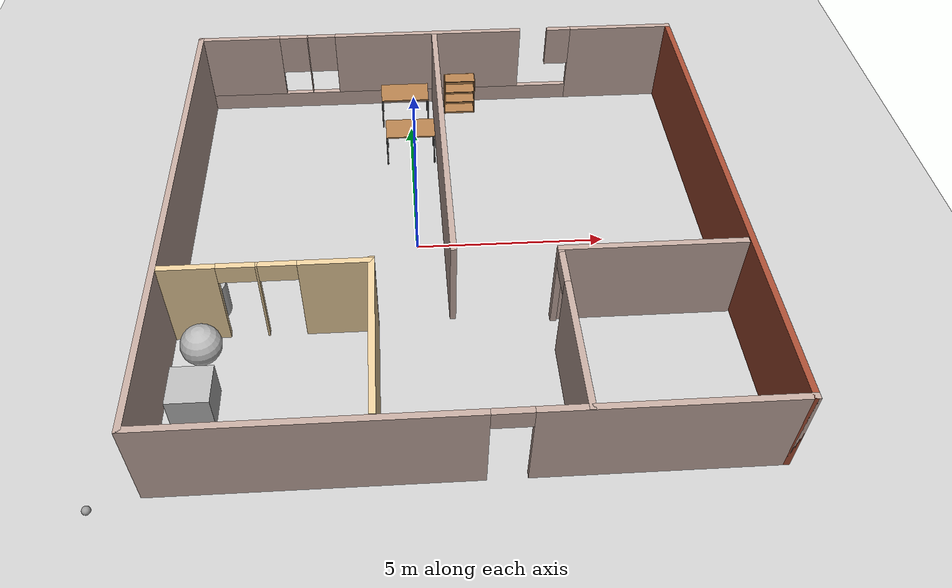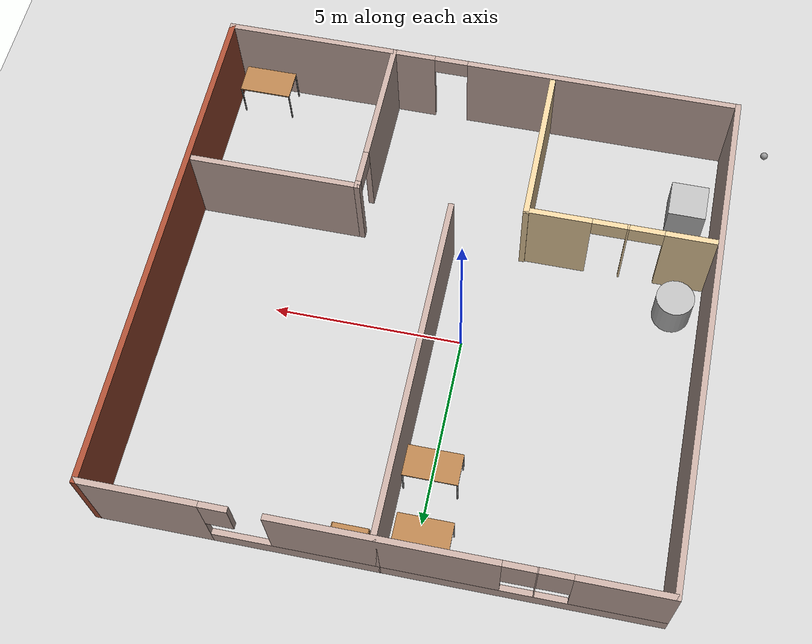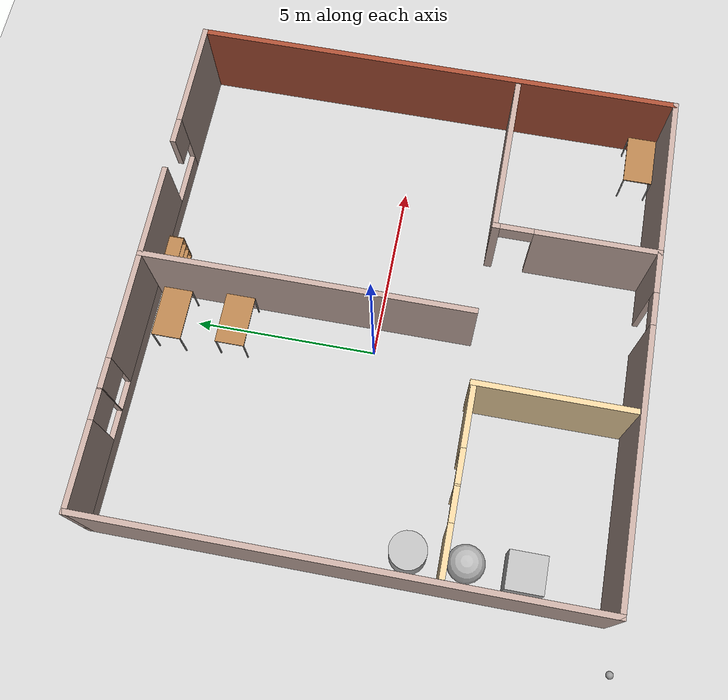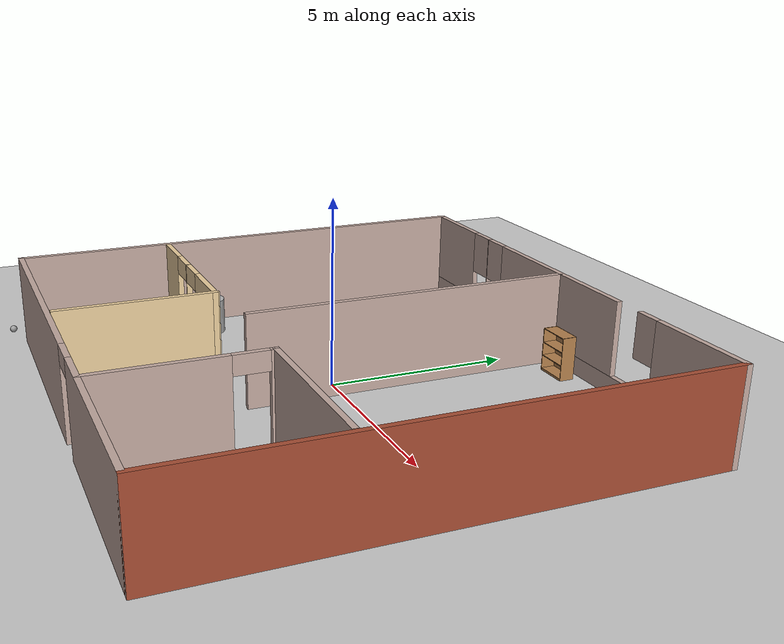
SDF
<sdf version="1.6">
 <world name="default">
  <plugin name="welcome_message" filename="libwelcome_message.so"/>
  <light name="sun" type="directional">
   <pose>0 0 10 0 -0 0</pose>
   <diffuse>0.8 0.8 0.8 1</diffuse>
   <specular>0.1 0.1 0.1 1</specular>
   <attenuation>
    <range>1000</range>
    <constant>0.9</constant>
    <linear>0.01</linear>
    <quadratic>0.001</quadratic>
   </attenuation>
   <direction>-0.5 0.5 -1</direction>
  </light>
  <model name="ground_plane">
   <static>1</static>
   <link name="link">
    <collision name="collision">
     <geometry><plane><normal>0 0 1</normal><size>100 100</size></plane></geometry>
     <surface><friction><ode><mu>100</mu><mu2>50</mu2></ode></friction></surface>
    </collision>
    <visual name="visual">
     <cast_shadows>0</cast_shadows>
     <geometry><plane><normal>0 0 1</normal><size>100 100</size></plane></geometry>
     <material>
      <script><uri>file://media/materials/scripts/gazebo.material</uri><name>Gazebo/Grey</name></script>
     </material>
    </visual>
   </link>
  </model>
  <gravity>0 0 -9.8</gravity>
  <magnetic_field>6e-06 2.3e-05 -4.2e-05</magnetic_field>
  <atmosphere type="adiabatic"/>
  <physics name="default_physics" default="0" type="ode">
   <max_step_size>0.001</max_step_size>
   <real_time_factor>1</real_time_factor>
   <real_time_update_rate>1000</real_time_update_rate>
  </physics>
  <scene><ambient>0.4 0.4 0.4 1</ambient><background>0.7 0.7 0.7 1</background><shadows>1</shadows></scene>
  <spherical_coordinates>
   <surface_model>EARTH_WGS84</surface_model>
   <latitude_deg>0</latitude_deg>
   <longitude_deg>0</longitude_deg>
   <elevation>0</elevation>
   <heading_deg>0</heading_deg>
  </spherical_coordinates>
  <model name="Apartment">
   <pose>0.8489 -0.348456 0.074794 0.001273 -0 0</pose>
   <link name="Wall_0">
    <collision name="Wall_0_Collision">
     <geometry><box><size>13.5 0.15 2.5</size></box></geometry>
     <pose>0 0 1.25 0 -0 0</pose>
    </collision>
    <visual name="Wall_0_Visual">
     <pose>0 0 1.25 0 -0 0</pose>
     <geometry><box><size>13.5 0.15 2.5</size></box></geometry>
     <material>
      <script><uri>file://media/materials/scripts/gazebo.material</uri><name>Gazebo/Grey</name></script>
      <ambient>0.760784 0.662745 0.627451 1</ambient>
     </material>
    </visual>
    <pose>-6.925 0 0 0 0 -1.5708</pose>
   </link>
   <link name="Wall_1">
    <pose>0 -6.675 0 0 -0 0</pose>
    <visual name="Wall_1_Visual_0">
     <pose>-3.31784 0 1.25 0 -0 0</pose>
     <geometry><box><size>7.36433 0.15 2.5</size></box></geometry>
     <material>
      <script><uri>file://media/materials/scripts/gazebo.material</uri><name>Gazebo/Grey</name></script>
      <ambient>0.760784 0.662745 0.627451 1</ambient>
     </material>
    </visual>
    <collision name="Wall_1_Collision_0">
     <geometry><box><size>7.36433 0.15 2.5</size></box></geometry>
     <pose>-3.31784 0 1.25 0 -0 0</pose>
    </collision>
    <visual name="Wall_1_Visual_1">
     <pose>4.13216 0 1.25 0 -0 0</pose>
     <geometry><box><size>5.73567 0.15 2.5</size></box></geometry>
     <material>
      <script><uri>file://media/materials/scripts/gazebo.material</uri><name>Gazebo/Grey</name></script>
      <ambient>0.760784 0.662745 0.627451 1</ambient>
     </material>
    </visual>
    <collision name="Wall_1_Collision_1">
     <geometry><box><size>5.73567 0.15 2.5</size></box></geometry>
     <pose>4.13216 0 1.25 0 -0 0</pose>
    </collision>
    <visual name="Wall_1_Visual_2">
     <pose>0.814328 0 2.25 0 -0 0</pose>
     <geometry><box><size>0.9 0.15 0.5</size></box></geometry>
     <material>
      <script><uri>file://media/materials/scripts/gazebo.material</uri><name>Gazebo/Grey</name></script>
      <ambient>0.760784 0.662745 0.627451 1</ambient>
     </material>
    </visual>
    <collision name="Wall_1_Collision_2">
     <geometry><box><size>0.9 0.15 0.5</size></box></geometry>
     <pose>0.814328 0 2.25 0 -0 0</pose>
    </collision>
   </link>
   <link name="Wall_10">
    <pose>-4.3729 -2.44089 0 0 -0 0</pose>
    <visual name="Wall_10_Visual_0">
     <pose>-1.80534 0 1.25 0 -0 0</pose>
     <geometry><box><size>1.33849 0.15 2.5</size></box></geometry>
     <material>
      <script><uri>file://media/materials/scripts/gazebo.material</uri><name>Gazebo/Grey</name></script>
      <ambient>0.921569 0.807843 0.615686 1</ambient>
     </material>
    </visual>
    <collision name="Wall_10_Collision_0">
     <geometry><box><size>1.33849 0.15 2.5</size></box></geometry>
     <pose>-1.80534 0 1.25 0 -0 0</pose>
    </collision>
    <visual name="Wall_10_Visual_1">
     <pose>-0.211947 0 1.25 0 -0 0</pose>
     <geometry><box><size>0.048297 0.15 2.5</size></box></geometry>
     <material>
      <script><uri>file://media/materials/scripts/gazebo.material</uri><name>Gazebo/Grey</name></script>
      <ambient>0.921569 0.807843 0.615686 1</ambient>
     </material>
    </visual>
    <collision name="Wall_10_Collision_1">
     <geometry><box><size>0.048297 0.15 2.5</size></box></geometry>
     <pose>-0.211947 0 1.25 0 -0 0</pose>
    </collision>
    <visual name="Wall_10_Visual_2">
     <pose>1.59339 0 1.25 0 -0 0</pose>
     <geometry><box><size>1.76239 0.15 2.5</size></box></geometry>
     <material>
      <script><uri>file://media/materials/scripts/gazebo.material</uri><name>Gazebo/Grey</name></script>
      <ambient>0.921569 0.807843 0.615686 1</ambient>
     </material>
    </visual>
    <collision name="Wall_10_Collision_2">
     <geometry><box><size>1.76239 0.15 2.5</size></box></geometry>
     <pose>1.59339 0 1.25 0 -0 0</pose>
    </collision>
    <visual name="Wall_10_Visual_3">
     <pose>-0.686096 0 2.25 0 -0 0</pose>
     <geometry><box><size>0.9 0.15 0.5</size></box></geometry>
     <material>
      <script><uri>file://media/materials/scripts/gazebo.material</uri><name>Gazebo/Grey</name></script>
      <ambient>0.921569 0.807843 0.615686 1</ambient>
     </material>
    </visual>
    <collision name="Wall_10_Collision_3">
     <geometry><box><size>0.9 0.15 0.5</size></box></geometry>
     <pose>-0.686096 0 2.25 0 -0 0</pose>
    </collision>
    <visual name="Wall_10_Visual_4">
     <pose>0.262201 0 2.25 0 -0 0</pose>
     <geometry><box><size>0.9 0.15 0.5</size></box></geometry>
     <material>
      <script><uri>file://media/materials/scripts/gazebo.material</uri><name>Gazebo/Grey</name></script>
      <ambient>0.921569 0.807843 0.615686 1</ambient>
     </material>
    </visual>
    <collision name="Wall_10_Collision_4">
     <geometry><box><size>0.9 0.15 0.5</size></box></geometry>
     <pose>0.262201 0 2.25 0 -0 0</pose>
    </collision>
   </link>
   <link name="Wall_11">
    <collision name="Wall_11_Collision">
     <geometry><box><size>4.25 0.15 2.5</size></box></geometry>
     <pose>0 0 1.25 0 -0 0</pose>
    </collision>
    <visual name="Wall_11_Visual">
     <pose>0 0 1.25 0 -0 0</pose>
     <geometry><box><size>4.25 0.15 2.5</size></box></geometry>
     <material>
      <script><uri>file://media/materials/scripts/gazebo.material</uri><name>Gazebo/Grey</name></script>
      <ambient>0.921569 0.807843 0.615686 1</ambient>
     </material>
    </visual>
    <pose>-1.97375 -4.4603 0 0 0 -1.5708</pose>
   </link>
   <link name="Wall_2">
    <collision name="Wall_2_Collision">
     <geometry><box><size>13.5 0.15 2.5</size></box></geometry>
     <pose>0 0 1.25 0 -0 0</pose>
    </collision>
    <visual name="Wall_2_Visual">
     <pose>0 0 1.25 0 -0 0</pose>
     <geometry><box><size>13.5 0.15 2.5</size></box></geometry>
     <material>
      <script><uri>file://media/materials/scripts/gazebo.material</uri><name>Gazebo/Bricks</name></script>
      <ambient>1 1 1 1</ambient>
     </material>
    </visual>
    <pose>6.925 0 0 0 -0 1.5708</pose>
   </link>
   <link name="Wall_3">
    <pose>0 6.675 0 0 -0 3.14159</pose>
    <visual name="Wall_3_Visual_0">
     <pose>-5.49902 0 1.25 0 -0 0</pose>
     <geometry><box><size>3.00196 0.15 2.5</size></box></geometry>
     <material>
      <script><uri>file://media/materials/scripts/gazebo.material</uri><name>Gazebo/Grey</name></script>
      <ambient>0.760784 0.662745 0.627451 1</ambient>
     </material>
    </visual>
    <collision name="Wall_3_Collision_0">
     <geometry><box><size>3.00196 0.15 2.5</size></box></geometry>
     <pose>-5.49902 0 1.25 0 -0 0</pose>
    </collision>
    <visual name="Wall_3_Visual_1">
     <pose>1.50098 0 0.25 0 -0 0</pose>
     <geometry><box><size>10.998 0.15 0.5</size></box></geometry>
     <material>
      <script><uri>file://media/materials/scripts/gazebo.material</uri><name>Gazebo/Grey</name></script>
      <ambient>0.760784 0.662745 0.627451 1</ambient>
     </material>
    </visual>
    <collision name="Wall_3_Collision_1">
     <geometry><box><size>10.998 0.15 0.5</size></box></geometry>
     <pose>1.50098 0 0.25 0 -0 0</pose>
    </collision>
    <visual name="Wall_3_Visual_2">
     <pose>0.25633 0 1.5 0 -0 0</pose>
     <geometry><box><size>5.50159 0.15 2</size></box></geometry>
     <material>
      <script><uri>file://media/materials/scripts/gazebo.material</uri><name>Gazebo/Grey</name></script>
      <ambient>0.760784 0.662745 0.627451 1</ambient>
     </material>
    </visual>
    <collision name="Wall_3_Collision_2">
     <geometry><box><size>5.50159 0.15 2</size></box></geometry>
     <pose>0.25633 0 1.5 0 -0 0</pose>
    </collision>
    <visual name="Wall_3_Visual_3">
     <pose>3.82009 0 1.5 0 -0 0</pose>
     <geometry><box><size>0.025936 0.15 2</size></box></geometry>
     <material>
      <script><uri>file://media/materials/scripts/gazebo.material</uri><name>Gazebo/Grey</name></script>
      <ambient>0.760784 0.662745 0.627451 1</ambient>
     </material>
    </visual>
    <collision name="Wall_3_Collision_3">
     <geometry><box><size>0.025936 0.15 2</size></box></geometry>
     <pose>3.82009 0 1.5 0 -0 0</pose>
    </collision>
    <visual name="Wall_3_Visual_4">
     <pose>5.81653 0 1.5 0 -0 0</pose>
     <geometry><box><size>2.36694 0.15 2</size></box></geometry>
     <material>
      <script><uri>file://media/materials/scripts/gazebo.material</uri><name>Gazebo/Grey</name></script>
      <ambient>0.760784 0.662745 0.627451 1</ambient>
     </material>
    </visual>
    <collision name="Wall_3_Collision_4">
     <geometry><box><size>2.36694 0.15 2</size></box></geometry>
     <pose>5.81653 0 1.5 0 -0 0</pose>
    </collision>
    <visual name="Wall_3_Visual_5">
     <pose>-3.64625 0 1.9 0 -0 0</pose>
     <geometry><box><size>0.703575 0.15 1.2</size></box></geometry>
     <material>
      <script><uri>file://media/materials/scripts/gazebo.material</uri><name>Gazebo/Grey</name></script>
      <ambient>0.760784 0.662745 0.627451 1</ambient>
     </material>
    </visual>
    <collision name="Wall_3_Collision_5">
     <geometry><box><size>0.703575 0.15 1.2</size></box></geometry>
     <pose>-3.64625 0 1.9 0 -0 0</pose>
    </collision>
    <visual name="Wall_3_Visual_6">
     <pose>3.40712 0 1.9 0 -0 0</pose>
     <geometry><box><size>0.8 0.15 1.2</size></box></geometry>
     <material>
      <script><uri>file://media/materials/scripts/gazebo.material</uri><name>Gazebo/Grey</name></script>
      <ambient>0.760784 0.662745 0.627451 1</ambient>
     </material>
    </visual>
    <collision name="Wall_3_Collision_6">
     <geometry><box><size>0.8 0.15 1.2</size></box></geometry>
     <pose>3.40712 0 1.9 0 -0 0</pose>
    </collision>
    <visual name="Wall_3_Visual_7">
     <pose>4.23306 0 1.9 0 -0 0</pose>
     <geometry><box><size>0.8 0.15 1.2</size></box></geometry>
     <material>
      <script><uri>file://media/materials/scripts/gazebo.material</uri><name>Gazebo/Grey</name></script>
      <ambient>0.760784 0.662745 0.627451 1</ambient>
     </material>
    </visual>
    <collision name="Wall_3_Collision_7">
     <geometry><box><size>0.8 0.15 1.2</size></box></geometry>
     <pose>4.23306 0 1.9 0 -0 0</pose>
    </collision>
   </link>
   <link name="Wall_5">
    <collision name="Wall_5_Collision">
     <geometry><box><size>9 0.15 2.5</size></box></geometry>
     <pose>0 0 1.25 0 -0 0</pose>
    </collision>
    <visual name="Wall_5_Visual">
     <pose>0 0 1.25 0 -0 0</pose>
     <geometry><box><size>9 0.15 2.5</size></box></geometry>
     <material>
      <script><uri>file://media/materials/scripts/gazebo.material</uri><name>Gazebo/Grey</name></script>
      <ambient>0.760784 0.662745 0.627451 1</ambient>
     </material>
    </visual>
    <pose>-0.072789 2.25 0 0 0 -1.5708</pose>
   </link>
   <link name="Wall_7">
    <pose>2.40502 -4.48734 0 0 -0 1.5708</pose>
    <visual name="Wall_7_Visual_0">
     <pose>-0.556201 0 1.25 0 -0 0</pose>
     <geometry><box><size>3.3876 0.15 2.5</size></box></geometry>
     <material>
      <script><uri>file://media/materials/scripts/gazebo.material</uri><name>Gazebo/Grey</name></script>
      <ambient>0.760784 0.662745 0.627451 1</ambient>
     </material>
    </visual>
    <collision name="Wall_7_Collision_0">
     <geometry><box><size>3.3876 0.15 2.5</size></box></geometry>
     <pose>-0.556201 0 1.25 0 -0 0</pose>
    </collision>
    <visual name="Wall_7_Visual_1">
     <pose>2.1438 0 1.25 0 -0 0</pose>
     <geometry><box><size>0.212402 0.15 2.5</size></box></geometry>
     <material>
      <script><uri>file://media/materials/scripts/gazebo.material</uri><name>Gazebo/Grey</name></script>
      <ambient>0.760784 0.662745 0.627451 1</ambient>
     </material>
    </visual>
    <collision name="Wall_7_Collision_1">
     <geometry><box><size>0.212402 0.15 2.5</size></box></geometry>
     <pose>2.1438 0 1.25 0 -0 0</pose>
    </collision>
    <visual name="Wall_7_Visual_2">
     <pose>1.5876 0 2.25 0 -0 0</pose>
     <geometry><box><size>0.9 0.15 0.5</size></box></geometry>
     <material>
      <script><uri>file://media/materials/scripts/gazebo.material</uri><name>Gazebo/Grey</name></script>
      <ambient>0.760784 0.662745 0.627451 1</ambient>
     </material>
    </visual>
    <collision name="Wall_7_Collision_2">
     <geometry><box><size>0.9 0.15 0.5</size></box></geometry>
     <pose>1.5876 0 2.25 0 -0 0</pose>
    </collision>
   </link>
   <link name="Wall_8">
    <collision name="Wall_8_Collision">
     <geometry><box><size>4.5 0.15 2.5</size></box></geometry>
     <pose>0 0 1.25 0 -0 0</pose>
    </collision>
    <visual name="Wall_8_Visual">
     <pose>0 0 1.25 0 -0 0</pose>
     <geometry><box><size>4.5 0.15 2.5</size></box></geometry>
     <material>
      <script><uri>file://media/materials/scripts/gazebo.material</uri><name>Gazebo/Grey</name></script>
      <ambient>0.760784 0.662745 0.627451 1</ambient>
     </material>
    </visual>
    <pose>4.58002 -2.31234 0 0 -0 0</pose>
   </link>
   <static>1</static>
  </model>
  <model name="bookshelf_0">
   <static>1</static>
   <link name="link">
    <inertial><mass>1</mass></inertial>
    <collision name="back">
     <pose>0 0.005 0.6 0 -0 0</pose>
     <geometry><box><size>0.9 0.01 1.2</size></box></geometry>
    </collision>
    <visual name="visual1">
     <pose>0 0.005 0.6 0 -0 0</pose>
     <geometry><box><size>0.9 0.01 1.2</size></box></geometry>
     <material>
      <script><uri>file://media/materials/scripts/gazebo.material</uri><name>Gazebo/Wood</name></script>
     </material>
    </visual>
    <collision name="left_side">
     <pose>0.45 -0.195 0.6 0 -0 0</pose>
     <geometry><box><size>0.02 0.4 1.2</size></box></geometry>
    </collision>
    <visual name="visual2">
     <pose>0.45 -0.195 0.6 0 -0 0</pose>
     <geometry><box><size>0.02 0.4 1.2</size></box></geometry>
     <material>
      <script><uri>file://media/materials/scripts/gazebo.material</uri><name>Gazebo/Wood</name></script>
     </material>
    </visual>
    <collision name="right_side">
     <pose>-0.45 -0.195 0.6 0 -0 0</pose>
     <geometry><box><size>0.02 0.4 1.2</size></box></geometry>
    </collision>
    <visual name="visual3">
     <pose>-0.45 -0.195 0.6 0 -0 0</pose>
     <geometry><box><size>0.02 0.4 1.2</size></box></geometry>
     <material>
      <script><uri>file://media/materials/scripts/gazebo.material</uri><name>Gazebo/Wood</name></script>
     </material>
    </visual>
    <collision name="bottom">
     <pose>0 -0.195 0.03 0 -0 0</pose>
     <geometry><box><size>0.88 0.4 0.06</size></box></geometry>
    </collision>
    <visual name="visual4">
     <pose>0 -0.195 0.03 0 -0 0</pose>
     <geometry><box><size>0.88 0.4 0.06</size></box></geometry>
     <material>
      <script><uri>file://media/materials/scripts/gazebo.material</uri><name>Gazebo/Wood</name></script>
     </material>
    </visual>
    <collision name="top">
     <pose>0 -0.195 1.19 0 -0 0</pose>
     <geometry><box><size>0.88 0.4 0.02</size></box></geometry>
    </collision>
    <visual name="visual5">
     <pose>0 -0.195 1.19 0 -0 0</pose>
     <geometry><box><size>0.88 0.4 0.02</size></box></geometry>
     <material>
      <script><uri>file://media/materials/scripts/gazebo.material</uri><name>Gazebo/Wood</name></script>
     </material>
    </visual>
    <collision name="low_shelf">
     <pose>0 -0.195 0.43 0 -0 0</pose>
     <geometry><box><size>0.88 0.4 0.02</size></box></geometry>
    </collision>
    <visual name="visual6">
     <pose>0 -0.195 0.43 0 -0 0</pose>
     <geometry><box><size>0.88 0.4 0.02</size></box></geometry>
     <material>
      <script><uri>file://media/materials/scripts/gazebo.material</uri><name>Gazebo/Wood</name></script>
     </material>
    </visual>
    <collision name="high_shelf">
     <pose>0 -0.195 0.8 0 -0 0</pose>
     <geometry><box><size>0.88 0.4 0.02</size></box></geometry>
    </collision>
    <visual name="visual7">
     <pose>0 -0.195 0.8 0 -0 0</pose>
     <geometry><box><size>0.88 0.4 0.02</size></box></geometry>
     <material>
      <script><uri>file://media/materials/scripts/gazebo.material</uri><name>Gazebo/Wood</name></script>
     </material>
    </visual>
   </link>
   <pose>1.525 6.11719 0 0 -0 0</pose>
  </model>
  <model name="my_ball">
   <link name="link_0">
    <inertial>
     <mass>1</mass>
     <inertia><ixx>0.1</ixx><ixy>0</ixy><ixz>0</ixz><iyy>0.1</iyy><iyz>0</iyz><izz>0.1</izz></inertia>
    </inertial>
    <visual name="visual">
     <geometry><sphere><radius>0.1</radius></sphere></geometry>
     <material>
      <lighting>1</lighting>
      <script><uri>file://media/materials/scripts/gazebo.material</uri><name>Gazebo/Grey</name></script>
      <ambient>1 1 1 1</ambient>
      <diffuse>1 1 1 1</diffuse>
      <specular>1 1 1 1</specular>
      <emissive>1 1 1 1</emissive>
      <shader type="vertex"><normal_map>__default__</normal_map></shader>
     </material>
    </visual>
    <collision name="collision">
     <geometry><sphere><radius>0.1</radius></sphere></geometry>
     <surface>
      <friction>
       <ode><mu>1</mu><mu2>1</mu2><fdir1>0 0 0</fdir1><slip1>0</slip1><slip2>0</slip2></ode>
       <torsional>
        <coefficient>1</coefficient>
        <patch_radius>0</patch_radius>
        <surface_radius>0</surface_radius>
        <use_patch_radius>1</use_patch_radius>
        <ode><slip>0</slip></ode>
       </torsional>
      </friction>
      <bounce><restitution_coefficient>0</restitution_coefficient><threshold>1e+06</threshold></bounce>
      <contact>
       <collide_without_contact>0</collide_without_contact>
       <collide_without_contact_bitmask>1</collide_without_contact_bitmask>
       <collide_bitmask>1</collide_bitmask>
       <ode>
        <soft_cfm>0</soft_cfm>
        <soft_erp>0.2</soft_erp>
        <kp>1e+13</kp>
        <kd>1</kd>
        <max_vel>0.01</max_vel>
        <min_depth>0</min_depth>
       </ode>
       <bullet>
        <split_impulse>1</split_impulse>
        <split_impulse_penetration_threshold>-0.01</split_impulse_penetration_threshold>
        <soft_cfm>0</soft_cfm>
        <soft_erp>0.2</soft_erp>
        <kp>1e+13</kp>
        <kd>1</kd>
       </bullet>
      </contact>
     </surface>
    </collision>
   </link>
   <static>0</static>
   <pose>-7.24424 -7.34328 0.1 0 -0 0</pose>
  </model>
  <model name="textured_shapes">
   <pose>-5.26159 -3.38501 0.5 0 -0 0</pose>
   <link name="box">
    <pose>0 -1.5 0 0 -0 0</pose>
    <collision name="collision"><geometry><box><size>1 1 1</size></box></geometry></collision>
    <visual name="visual">
     <geometry><box><size>1 1 1</size></box></geometry>
     <material>
      <script>
       <uri>model://textured_shapes/materials/scripts</uri>
       <uri>model://textured_shapes/materials/textures</uri>
       <name>TexturedShape/Squares</name>
      </script>
     </material>
    </visual>
    <inertial>
     <inertia><ixx>1</ixx><ixy>0</ixy><ixz>0</ixz><iyy>1</iyy><iyz>0</iyz><izz>1</izz></inertia>
     <mass>1</mass>
    </inertial>
   </link>
   <link name="sphere">
    <collision name="collision"><geometry><sphere><radius>0.5</radius></sphere></geometry></collision>
    <visual name="visual">
     <geometry><sphere><radius>0.5</radius></sphere></geometry>
     <material>
      <script>
       <uri>model://textured_shapes/materials/scripts</uri>
       <uri>model://textured_shapes/materials/textures</uri>
       <name>TexturedShape/Squares</name>
      </script>
     </material>
    </visual>
    <inertial>
     <inertia><ixx>1</ixx><ixy>0</ixy><ixz>0</ixz><iyy>1</iyy><iyz>0</iyz><izz>1</izz></inertia>
     <mass>1</mass>
    </inertial>
   </link>
   <link name="cylinder">
    <pose>0 1.5 0 0 -0 0</pose>
    <collision name="collision">
     <geometry><cylinder><radius>0.5</radius><length>1</length></cylinder></geometry>
    </collision>
    <visual name="visual">
     <geometry><cylinder><radius>0.5</radius><length>1</length></cylinder></geometry>
     <material>
      <script>
       <uri>model://textured_shapes/materials/scripts</uri>
       <uri>model://textured_shapes/materials/textures</uri>
       <name>TexturedShape/Squares</name>
      </script>
     </material>
    </visual>
    <inertial>
     <inertia><ixx>1</ixx><ixy>0</ixy><ixz>0</ixz><iyy>1</iyy><iyz>0</iyz><izz>1</izz></inertia>
     <mass>1</mass>
    </inertial>
   </link>
  </model>
  <model name="table">
   <static>0</static>
   <link name="link">
    <collision name="surface">
     <pose>0 0 1 0 -0 0</pose>
     <geometry><box><size>1.5 0.8 0.03</size></box></geometry>
     <surface><friction><ode><mu>0.6</mu><mu2>0.6</mu2></ode></friction></surface>
    </collision>
    <visual name="visual1">
     <pose>0 0 1 0 -0 0</pose>
     <geometry><box><size>1.4 0.8 0.04</size></box></geometry>
     <material>
      <script><uri>file://media/materials/scripts/gazebo.material</uri><name>Gazebo/Wood</name></script>
     </material>
    </visual>
    <collision name="front_left_leg">
     <pose>0.68 0.38 0.5 0 -0 0</pose>
     <geometry><cylinder><radius>0.02</radius><length>1</length></cylinder></geometry>
    </collision>
    <visual name="front_left_leg">
     <pose>0.68 0.38 0.5 0 -0 0</pose>
     <geometry><cylinder><radius>0.02</radius><length>1</length></cylinder></geometry>
     <material>
      <script><uri>file://media/materials/scripts/gazebo.material</uri><name>Gazebo/Grey</name></script>
     </material>
    </visual>
    <collision name="front_right_leg">
     <pose>0.68 -0.38 0.5 0 -0 0</pose>
     <geometry><cylinder><radius>0.02</radius><length>1</length></cylinder></geometry>
    </collision>
    <visual name="front_right_leg">
     <pose>0.68 -0.38 0.5 0 -0 0</pose>
     <geometry><cylinder><radius>0.02</radius><length>1</length></cylinder></geometry>
     <material>
      <script><uri>file://media/materials/scripts/gazebo.material</uri><name>Gazebo/Grey</name></script>
     </material>
    </visual>
    <collision name="back_right_leg">
     <pose>-0.68 -0.38 0.5 0 -0 0</pose>
     <geometry><cylinder><radius>0.02</radius><length>1</length></cylinder></geometry>
    </collision>
    <visual name="back_right_leg">
     <pose>-0.68 -0.38 0.5 0 -0 0</pose>
     <geometry><cylinder><radius>0.02</radius><length>1</length></cylinder></geometry>
     <material>
      <script><uri>file://media/materials/scripts/gazebo.material</uri><name>Gazebo/Grey</name></script>
     </material>
    </visual>
    <collision name="back_left_leg">
     <pose>-0.68 0.38 0.5 0 -0 0</pose>
     <geometry><cylinder><radius>0.02</radius><length>1</length></cylinder></geometry>
    </collision>
    <visual name="back_left_leg">
     <pose>-0.68 0.38 0.5 0 -0 0</pose>
     <geometry><cylinder><radius>0.02</radius><length>1</length></cylinder></geometry>
     <material>
      <script><uri>file://media/materials/scripts/gazebo.material</uri><name>Gazebo/Grey</name></script>
     </material>
    </visual>
    <inertial>
     <inertia><ixx>1</ixx><ixy>0</ixy><ixz>0</ixz><iyy>1</iyy><iyz>0</iyz><izz>1</izz></inertia>
     <mass>1</mass>
    </inertial>
   </link>
   <pose>6.81748 -6.48403 -1e-06 0 1e-06 0</pose>
  </model>
  <model name="table_0">
   <static>0</static>
   <link name="link">
    <collision name="surface">
     <pose>0 0 1 0 -0 0</pose>
     <geometry><box><size>1.5 0.8 0.03</size></box></geometry>
     <surface><friction><ode><mu>0.6</mu><mu2>0.6</mu2></ode></friction></surface>
    </collision>
    <visual name="visual1">
     <pose>0 0 1 0 -0 0</pose>
     <geometry><box><size>1.4 0.8 0.04</size></box></geometry>
     <material>
      <script><uri>file://media/materials/scripts/gazebo.material</uri><name>Gazebo/Wood</name></script>
     </material>
    </visual>
    <collision name="front_left_leg">
     <pose>0.68 0.38 0.5 0 -0 0</pose>
     <geometry><cylinder><radius>0.02</radius><length>1</length></cylinder></geometry>
    </collision>
    <visual name="front_left_leg">
     <pose>0.68 0.38 0.5 0 -0 0</pose>
     <geometry><cylinder><radius>0.02</radius><length>1</length></cylinder></geometry>
     <material>
      <script><uri>file://media/materials/scripts/gazebo.material</uri><name>Gazebo/Grey</name></script>
     </material>
    </visual>
    <collision name="front_right_leg">
     <pose>0.68 -0.38 0.5 0 -0 0</pose>
     <geometry><cylinder><radius>0.02</radius><length>1</length></cylinder></geometry>
    </collision>
    <visual name="front_right_leg">
     <pose>0.68 -0.38 0.5 0 -0 0</pose>
     <geometry><cylinder><radius>0.02</radius><length>1</length></cylinder></geometry>
     <material>
      <script><uri>file://media/materials/scripts/gazebo.material</uri><name>Gazebo/Grey</name></script>
     </material>
    </visual>
    <collision name="back_right_leg">
     <pose>-0.68 -0.38 0.5 0 -0 0</pose>
     <geometry><cylinder><radius>0.02</radius><length>1</length></cylinder></geometry>
    </collision>
    <visual name="back_right_leg">
     <pose>-0.68 -0.38 0.5 0 -0 0</pose>
     <geometry><cylinder><radius>0.02</radius><length>1</length></cylinder></geometry>
     <material>
      <script><uri>file://media/materials/scripts/gazebo.material</uri><name>Gazebo/Grey</name></script>
     </material>
    </visual>
    <collision name="back_left_leg">
     <pose>-0.68 0.38 0.5 0 -0 0</pose>
     <geometry><cylinder><radius>0.02</radius><length>1</length></cylinder></geometry>
    </collision>
    <visual name="back_left_leg">
     <pose>-0.68 0.38 0.5 0 -0 0</pose>
     <geometry><cylinder><radius>0.02</radius><length>1</length></cylinder></geometry>
     <material>
      <script><uri>file://media/materials/scripts/gazebo.material</uri><name>Gazebo/Grey</name></script>
     </material>
    </visual>
    <inertial>
     <inertia><ixx>1</ixx><ixy>0</ixy><ixz>0</ixz><iyy>1</iyy><iyz>0</iyz><izz>1</izz></inertia>
     <mass>1</mass>
    </inertial>
   </link>
   <pose>-0.157828 5.53176 -9e-06 1e-06 -1e-06 0</pose>
  </model>
  <model name="table_0_clone">
   <static>0</static>
   <link name="link">
    <collision name="surface">
     <pose>0 0 1 0 -0 0</pose>
     <geometry><box><size>1.5 0.8 0.03</size></box></geometry>
     <surface><friction><ode><mu>0.6</mu><mu2>0.6</mu2></ode></friction></surface>
    </collision>
    <visual name="visual1">
     <pose>0 0 1 0 -0 0</pose>
     <geometry><box><size>1.4 0.8 0.04</size></box></geometry>
     <material>
      <script><uri>file://media/materials/scripts/gazebo.material</uri><name>Gazebo/Wood</name></script>
     </material>
    </visual>
    <collision name="front_left_leg">
     <pose>0.68 0.38 0.5 0 -0 0</pose>
     <geometry><cylinder><radius>0.02</radius><length>1</length></cylinder></geometry>
    </collision>
    <visual name="front_left_leg">
     <pose>0.68 0.38 0.5 0 -0 0</pose>
     <geometry><cylinder><radius>0.02</radius><length>1</length></cylinder></geometry>
     <material>
      <script><uri>file://media/materials/scripts/gazebo.material</uri><name>Gazebo/Grey</name></script>
     </material>
    </visual>
    <collision name="front_right_leg">
     <pose>0.68 -0.38 0.5 0 -0 0</pose>
     <geometry><cylinder><radius>0.02</radius><length>1</length></cylinder></geometry>
    </collision>
    <visual name="front_right_leg">
     <pose>0.68 -0.38 0.5 0 -0 0</pose>
     <geometry><cylinder><radius>0.02</radius><length>1</length></cylinder></geometry>
     <material>
      <script><uri>file://media/materials/scripts/gazebo.material</uri><name>Gazebo/Grey</name></script>
     </material>
    </visual>
    <collision name="back_right_leg">
     <pose>-0.68 -0.38 0.5 0 -0 0</pose>
     <geometry><cylinder><radius>0.02</radius><length>1</length></cylinder></geometry>
    </collision>
    <visual name="back_right_leg">
     <pose>-0.68 -0.38 0.5 0 -0 0</pose>
     <geometry><cylinder><radius>0.02</radius><length>1</length></cylinder></geometry>
     <material>
      <script><uri>file://media/materials/scripts/gazebo.material</uri><name>Gazebo/Grey</name></script>
     </material>
    </visual>
    <collision name="back_left_leg">
     <pose>-0.68 0.38 0.5 0 -0 0</pose>
     <geometry><cylinder><radius>0.02</radius><length>1</length></cylinder></geometry>
    </collision>
    <visual name="back_left_leg">
     <pose>-0.68 0.38 0.5 0 -0 0</pose>
     <geometry><cylinder><radius>0.02</radius><length>1</length></cylinder></geometry>
     <material>
      <script><uri>file://media/materials/scripts/gazebo.material</uri><name>Gazebo/Grey</name></script>
     </material>
    </visual>
    <inertial>
     <inertia><ixx>1</ixx><ixy>0</ixy><ixz>0</ixz><iyy>1</iyy><iyz>0</iyz><izz>1</izz></inertia>
     <mass>1</mass>
    </inertial>
   </link>
   <pose>-0.044548 3.80409 0.003075 0 -0.004393 -4e-06</pose>
  </model>
 </world>
</sdf>
